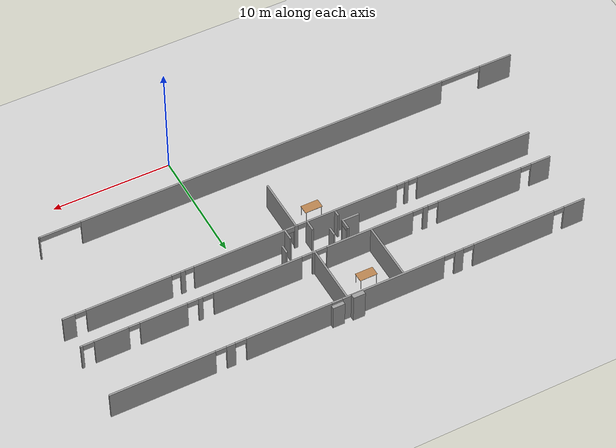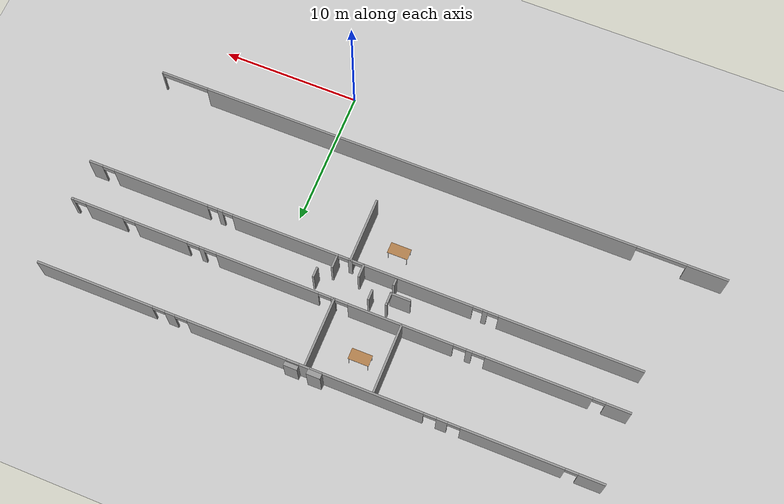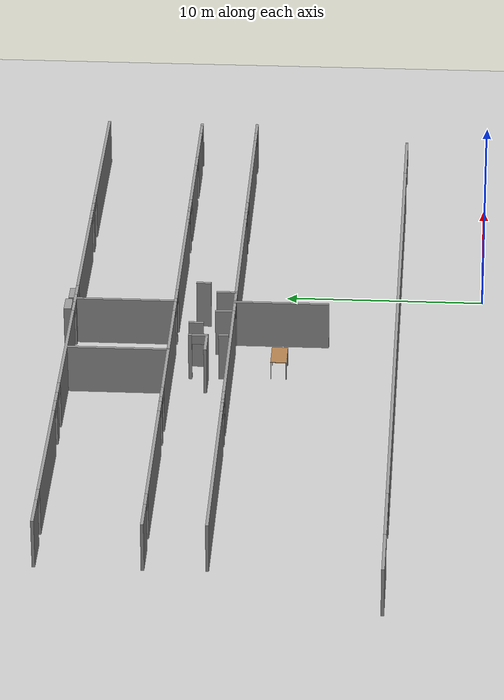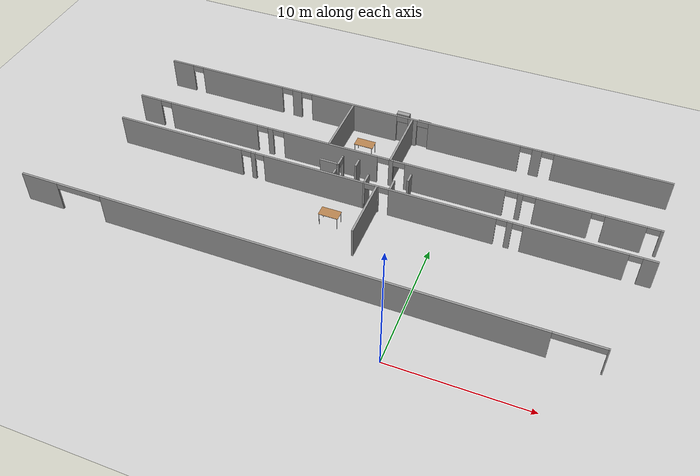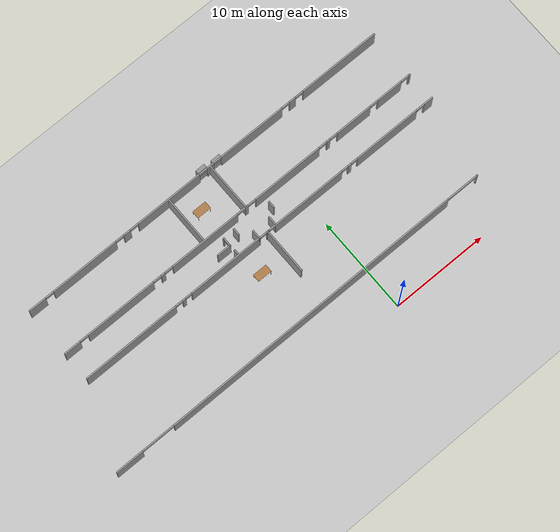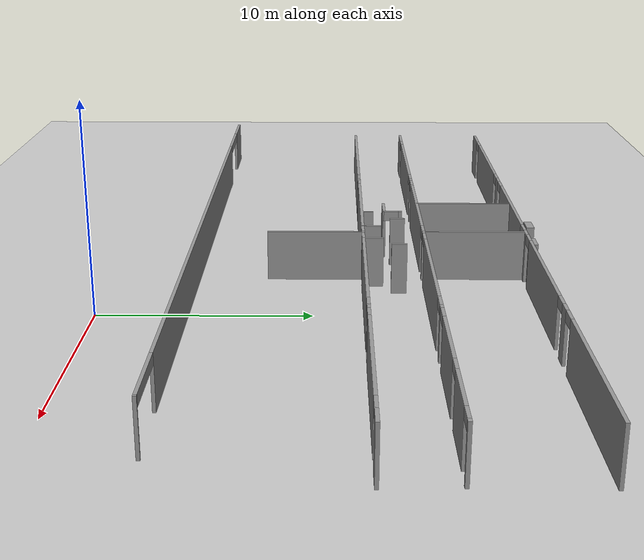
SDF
<sdf version="1.6">
 <world name="default">
  <model name="ground_plane">
   <static>1</static>
   <link name="link">
    <collision name="collision">
     <geometry><plane><normal>0 0 1</normal><size>100 100</size></plane></geometry>
     <surface><friction><ode><mu>100</mu><mu2>50</mu2></ode></friction></surface>
    </collision>
    <visual name="visual">
     <cast_shadows>0</cast_shadows>
     <geometry><plane><normal>0 0 1</normal><size>100 100</size></plane></geometry>
     <material>
      <script><uri>file://media/materials/scripts/gazebo.material</uri><name>Gazebo/Grey</name></script>
     </material>
    </visual>
   </link>
  </model>
  <model name="fin_se1f1.sdf">
   <pose>1.8125 -2.2901 0 0 -0 0</pose>
   <link name="Wall_1">
    <pose>-9.82457 6.52457 0 0 -0 0</pose>
    <visual name="Wall_1_Visual_0">
     <pose>-19.528 0 1.25 0 -0 0</pose>
     <geometry><box><size>2.94395 0.15 2.5</size></box></geometry>
     <material>
      <script><uri>file://media/materials/scripts/gazebo.material</uri><name>Gazebo/Grey</name></script>
      <ambient>1 1 1 1</ambient>
     </material>
     <meta><layer>0</layer></meta>
    </visual>
    <collision name="Wall_1_Collision_0">
     <geometry><box><size>2.94395 0.15 2.5</size></box></geometry>
     <pose>-19.528 0 1.25 0 -0 0</pose>
    </collision>
    <visual name="Wall_1_Visual_1">
     <pose>1.49202 0 1.25 0 -0 0</pose>
     <geometry><box><size>31.9924 0.15 2.5</size></box></geometry>
     <material>
      <script><uri>file://media/materials/scripts/gazebo.material</uri><name>Gazebo/Grey</name></script>
      <ambient>1 1 1 1</ambient>
     </material>
     <meta><layer>0</layer></meta>
    </visual>
    <collision name="Wall_1_Collision_1">
     <geometry><box><size>31.9924 0.15 2.5</size></box></geometry>
     <pose>1.49202 0 1.25 0 -0 0</pose>
    </collision>
    <visual name="Wall_1_Visual_2">
     <pose>20.9503 0 1.25 0 -0 0</pose>
     <geometry><box><size>0.099489 0.15 2.5</size></box></geometry>
     <material>
      <script><uri>file://media/materials/scripts/gazebo.material</uri><name>Gazebo/Grey</name></script>
      <ambient>1 1 1 1</ambient>
     </material>
     <meta><layer>0</layer></meta>
    </visual>
    <collision name="Wall_1_Collision_2">
     <geometry><box><size>0.099489 0.15 2.5</size></box></geometry>
     <pose>20.9503 0 1.25 0 -0 0</pose>
    </collision>
    <visual name="Wall_1_Visual_3">
     <pose>-16.2801 0 2.25 0 -0 0</pose>
     <geometry><box><size>3.55186 0.15 0.5</size></box></geometry>
     <material>
      <script><uri>file://media/materials/scripts/gazebo.material</uri><name>Gazebo/Grey</name></script>
      <ambient>1 1 1 1</ambient>
     </material>
     <meta><layer>0</layer></meta>
    </visual>
    <collision name="Wall_1_Collision_3">
     <geometry><box><size>3.55186 0.15 0.5</size></box></geometry>
     <pose>-16.2801 0 2.25 0 -0 0</pose>
    </collision>
    <visual name="Wall_1_Visual_4">
     <pose>19.1944 0 2.25 0 -0 0</pose>
     <geometry><box><size>3.41229 0.15 0.5</size></box></geometry>
     <material>
      <script><uri>file://media/materials/scripts/gazebo.material</uri><name>Gazebo/Grey</name></script>
      <ambient>1 1 1 1</ambient>
     </material>
     <meta><layer>0</layer></meta>
    </visual>
    <collision name="Wall_1_Collision_4">
     <geometry><box><size>3.41229 0.15 0.5</size></box></geometry>
     <pose>19.1944 0 2.25 0 -0 0</pose>
    </collision>
   </link>
   <link name="Wall_102">
    <collision name="Wall_102_Collision">
     <geometry><box><size>0.75 0.15 2.5</size></box></geometry>
     <pose>0 0 1.25 0 -0 0</pose>
    </collision>
    <visual name="Wall_102_Visual">
     <pose>0 0 1.25 0 -0 0</pose>
     <geometry><box><size>0.75 0.15 2.5</size></box></geometry>
     <material>
      <script><uri>file://media/materials/scripts/gazebo.material</uri><name>Gazebo/Grey</name></script>
      <ambient>1 1 1 1</ambient>
     </material>
     <meta><layer>0</layer></meta>
    </visual>
    <pose>-8.86395 16.4896 0 0 0 -1.5708</pose>
   </link>
   <link name="Wall_112">
    <collision name="Wall_112_Collision">
     <geometry><box><size>4.75 0.15 2.5</size></box></geometry>
     <pose>0 0 1.25 0 -0 0</pose>
    </collision>
    <visual name="Wall_112_Visual">
     <pose>0 0 1.25 0 -0 0</pose>
     <geometry><box><size>4.75 0.15 2.5</size></box></geometry>
     <material>
      <script><uri>file://media/materials/scripts/gazebo.material</uri><name>Gazebo/Grey</name></script>
      <ambient>1 1 1 1</ambient>
     </material>
     <meta><layer>0</layer></meta>
    </visual>
    <pose>-6.68954 12.3361 0 0 0 -1.5708</pose>
   </link>
   <link name="Wall_127">
    <pose>-10.1137 16.2977 0 0 0 -1.5708</pose>
    <visual name="Wall_127_Visual_0">
     <pose>-0.408972 0 1.25 0 -0 0</pose>
     <geometry><box><size>0.182055 0.15 2.5</size></box></geometry>
     <material>
      <script><uri>file://media/materials/scripts/gazebo.material</uri><name>Gazebo/Grey</name></script>
      <ambient>1 1 1 1</ambient>
     </material>
     <meta><layer>0</layer></meta>
    </visual>
    <collision name="Wall_127_Collision_0">
     <geometry><box><size>0.182055 0.15 2.5</size></box></geometry>
     <pose>-0.408972 0 1.25 0 -0 0</pose>
    </collision>
    <visual name="Wall_127_Visual_1">
     <pose>0.480687 0 1.25 0 -0 0</pose>
     <geometry><box><size>0.038626 0.15 2.5</size></box></geometry>
     <material>
      <script><uri>file://media/materials/scripts/gazebo.material</uri><name>Gazebo/Grey</name></script>
      <ambient>1 1 1 1</ambient>
     </material>
     <meta><layer>0</layer></meta>
    </visual>
    <collision name="Wall_127_Collision_1">
     <geometry><box><size>0.038626 0.15 2.5</size></box></geometry>
     <pose>0.480687 0 1.25 0 -0 0</pose>
    </collision>
    <visual name="Wall_127_Visual_2">
     <pose>0.071714 0 2.25 0 -0 0</pose>
     <geometry><box><size>0.779319 0.15 0.5</size></box></geometry>
     <material>
      <script><uri>file://media/materials/scripts/gazebo.material</uri><name>Gazebo/Grey</name></script>
      <ambient>1 1 1 1</ambient>
     </material>
     <meta><layer>0</layer></meta>
    </visual>
    <collision name="Wall_127_Collision_2">
     <geometry><box><size>0.779319 0.15 0.5</size></box></geometry>
     <pose>0.071714 0 2.25 0 -0 0</pose>
    </collision>
   </link>
   <link name="Wall_128">
    <collision name="Wall_128_Collision">
     <geometry><box><size>1.5 0.15 2.5</size></box></geometry>
     <pose>0 0 1.25 0 -0 0</pose>
    </collision>
    <visual name="Wall_128_Visual">
     <pose>0 0 1.25 0 -0 0</pose>
     <geometry><box><size>1.5 0.15 2.5</size></box></geometry>
     <material>
      <script><uri>file://media/materials/scripts/gazebo.material</uri><name>Gazebo/Grey</name></script>
      <ambient>1 1 1 1</ambient>
     </material>
     <meta><layer>0</layer></meta>
    </visual>
    <pose>-10.7887 15.8727 0 0 -0 3.14159</pose>
   </link>
   <link name="Wall_130">
    <collision name="Wall_130_Collision">
     <geometry><box><size>0.5 0.15 2.5</size></box></geometry>
     <pose>0 0 1.25 0 -0 0</pose>
    </collision>
    <visual name="Wall_130_Visual">
     <pose>0 0 1.25 0 -0 0</pose>
     <geometry><box><size>0.5 0.15 2.5</size></box></geometry>
     <material>
      <script><uri>file://media/materials/scripts/gazebo.material</uri><name>Gazebo/Grey</name></script>
      <ambient>1 1 1 1</ambient>
     </material>
     <meta><layer>0</layer></meta>
    </visual>
    <pose>-10.0602 15.0496 0 0 0 -1.5708</pose>
   </link>
   <link name="Wall_132">
    <collision name="Wall_132_Collision">
     <geometry><box><size>0.75 0.15 2.5</size></box></geometry>
     <pose>0 0 1.25 0 -0 0</pose>
    </collision>
    <visual name="Wall_132_Visual">
     <pose>0 0 1.25 0 -0 0</pose>
     <geometry><box><size>0.75 0.15 2.5</size></box></geometry>
     <material>
      <script><uri>file://media/materials/scripts/gazebo.material</uri><name>Gazebo/Grey</name></script>
      <ambient>1 1 1 1</ambient>
     </material>
     <meta><layer>0</layer></meta>
    </visual>
    <pose>-4.81696 16.3807 0 0 -0 1.5708</pose>
   </link>
   <link name="Wall_136">
    <collision name="Wall_136_Collision">
     <geometry><box><size>1 0.15 2.5</size></box></geometry>
     <pose>0 0 1.25 0 -0 0</pose>
    </collision>
    <visual name="Wall_136_Visual">
     <pose>0 0 1.25 0 -0 0</pose>
     <geometry><box><size>1 0.15 2.5</size></box></geometry>
     <material>
      <script><uri>file://media/materials/scripts/gazebo.material</uri><name>Gazebo/Grey</name></script>
      <ambient>1 1 1 1</ambient>
     </material>
     <meta><layer>0</layer></meta>
    </visual>
    <pose>-5.7265 15.1681 0 0 -0 1.5708</pose>
   </link>
   <link name="Wall_138">
    <collision name="Wall_138_Collision">
     <geometry><box><size>1 0.15 2.5</size></box></geometry>
     <pose>0 0 1.25 0 -0 0</pose>
    </collision>
    <visual name="Wall_138_Visual">
     <pose>0 0 1.25 0 -0 0</pose>
     <geometry><box><size>1 0.15 2.5</size></box></geometry>
     <material>
      <script><uri>file://media/materials/scripts/gazebo.material</uri><name>Gazebo/Grey</name></script>
      <ambient>1 1 1 1</ambient>
     </material>
     <meta><layer>0</layer></meta>
    </visual>
    <pose>-7.65259 15.1146 0 0 -0 1.5708</pose>
   </link>
   <link name="Wall_22">
    <pose>-7.37457 22.7246 0 0 -0 3.14159</pose>
    <visual name="Wall_22_Visual_0">
     <pose>-15.9484 0 1.25 0 -0 0</pose>
     <geometry><box><size>8.60329 0.15 2.5</size></box></geometry>
     <material>
      <script><uri>file://media/materials/scripts/gazebo.material</uri><name>Gazebo/Grey</name></script>
      <ambient>1 1 1 1</ambient>
     </material>
     <meta><layer>0</layer></meta>
    </visual>
    <collision name="Wall_22_Collision_0">
     <geometry><box><size>8.60329 0.15 2.5</size></box></geometry>
     <pose>-15.9484 0 1.25 0 -0 0</pose>
    </collision>
    <visual name="Wall_22_Visual_1">
     <pose>-10.3821 0 1.25 0 -0 0</pose>
     <geometry><box><size>0.729199 0.15 2.5</size></box></geometry>
     <material>
      <script><uri>file://media/materials/scripts/gazebo.material</uri><name>Gazebo/Grey</name></script>
      <ambient>1 1 1 1</ambient>
     </material>
     <meta><layer>0</layer></meta>
    </visual>
    <collision name="Wall_22_Collision_1">
     <geometry><box><size>0.729199 0.15 2.5</size></box></geometry>
     <pose>-10.3821 0 1.25 0 -0 0</pose>
    </collision>
    <visual name="Wall_22_Visual_2">
     <pose>-5.52468 0 1.25 0 -0 0</pose>
     <geometry><box><size>7.18566 0.15 2.5</size></box></geometry>
     <material>
      <script><uri>file://media/materials/scripts/gazebo.material</uri><name>Gazebo/Grey</name></script>
      <ambient>1 1 1 1</ambient>
     </material>
     <meta><layer>0</layer></meta>
    </visual>
    <collision name="Wall_22_Collision_2">
     <geometry><box><size>7.18566 0.15 2.5</size></box></geometry>
     <pose>-5.52468 0 1.25 0 -0 0</pose>
    </collision>
    <visual name="Wall_22_Visual_3">
     <pose>-0.657198 0 1.25 0 -0 0</pose>
     <geometry><box><size>0.749313 0.15 2.5</size></box></geometry>
     <material>
      <script><uri>file://media/materials/scripts/gazebo.material</uri><name>Gazebo/Grey</name></script>
      <ambient>1 1 1 1</ambient>
     </material>
     <meta><layer>0</layer></meta>
    </visual>
    <collision name="Wall_22_Collision_3">
     <geometry><box><size>0.749313 0.15 2.5</size></box></geometry>
     <pose>-0.657198 0 1.25 0 -0 0</pose>
    </collision>
    <visual name="Wall_22_Visual_4">
     <pose>4.19017 0 1.25 0 -0 0</pose>
     <geometry><box><size>7.14543 0.15 2.5</size></box></geometry>
     <material>
      <script><uri>file://media/materials/scripts/gazebo.material</uri><name>Gazebo/Grey</name></script>
      <ambient>1 1 1 1</ambient>
     </material>
     <meta><layer>0</layer></meta>
    </visual>
    <collision name="Wall_22_Collision_4">
     <geometry><box><size>7.14543 0.15 2.5</size></box></geometry>
     <pose>4.19017 0 1.25 0 -0 0</pose>
    </collision>
    <visual name="Wall_22_Visual_5">
     <pose>9.0476 0 1.25 0 -0 0</pose>
     <geometry><box><size>0.769426 0.15 2.5</size></box></geometry>
     <material>
      <script><uri>file://media/materials/scripts/gazebo.material</uri><name>Gazebo/Grey</name></script>
      <ambient>1 1 1 1</ambient>
     </material>
     <meta><layer>0</layer></meta>
    </visual>
    <collision name="Wall_22_Collision_5">
     <geometry><box><size>0.769426 0.15 2.5</size></box></geometry>
     <pose>9.0476 0 1.25 0 -0 0</pose>
    </collision>
    <visual name="Wall_22_Visual_6">
     <pose>13.9151 0 1.25 0 -0 0</pose>
     <geometry><box><size>7.16554 0.15 2.5</size></box></geometry>
     <material>
      <script><uri>file://media/materials/scripts/gazebo.material</uri><name>Gazebo/Grey</name></script>
      <ambient>1 1 1 1</ambient>
     </material>
     <meta><layer>0</layer></meta>
    </visual>
    <collision name="Wall_22_Collision_6">
     <geometry><box><size>7.16554 0.15 2.5</size></box></geometry>
     <pose>13.9151 0 1.25 0 -0 0</pose>
    </collision>
    <visual name="Wall_22_Visual_7">
     <pose>19.3239 0 1.25 0 -0 0</pose>
     <geometry><box><size>1.85214 0.15 2.5</size></box></geometry>
     <material>
      <script><uri>file://media/materials/scripts/gazebo.material</uri><name>Gazebo/Grey</name></script>
      <ambient>1 1 1 1</ambient>
     </material>
     <meta><layer>0</layer></meta>
    </visual>
    <collision name="Wall_22_Collision_7">
     <geometry><box><size>1.85214 0.15 2.5</size></box></geometry>
     <pose>19.3239 0 1.25 0 -0 0</pose>
    </collision>
    <visual name="Wall_22_Visual_8">
     <pose>-11.1967 0 2.25 0 -0 0</pose>
     <geometry><box><size>0.9 0.15 0.5</size></box></geometry>
     <material>
      <script><uri>file://media/materials/scripts/gazebo.material</uri><name>Gazebo/Grey</name></script>
      <ambient>1 1 1 1</ambient>
     </material>
     <meta><layer>0</layer></meta>
    </visual>
    <collision name="Wall_22_Collision_8">
     <geometry><box><size>0.9 0.15 0.5</size></box></geometry>
     <pose>-11.1967 0 2.25 0 -0 0</pose>
    </collision>
    <visual name="Wall_22_Visual_9">
     <pose>-9.56751 0 2.25 0 -0 0</pose>
     <geometry><box><size>0.9 0.15 0.5</size></box></geometry>
     <material>
      <script><uri>file://media/materials/scripts/gazebo.material</uri><name>Gazebo/Grey</name></script>
      <ambient>1 1 1 1</ambient>
     </material>
     <meta><layer>0</layer></meta>
    </visual>
    <collision name="Wall_22_Collision_9">
     <geometry><box><size>0.9 0.15 0.5</size></box></geometry>
     <pose>-9.56751 0 2.25 0 -0 0</pose>
    </collision>
    <visual name="Wall_22_Visual_10">
     <pose>-1.48185 0 2.25 0 -0 0</pose>
     <geometry><box><size>0.9 0.15 0.5</size></box></geometry>
     <material>
      <script><uri>file://media/materials/scripts/gazebo.material</uri><name>Gazebo/Grey</name></script>
      <ambient>1 1 1 1</ambient>
     </material>
     <meta><layer>0</layer></meta>
    </visual>
    <collision name="Wall_22_Collision_10">
     <geometry><box><size>0.9 0.15 0.5</size></box></geometry>
     <pose>-1.48185 0 2.25 0 -0 0</pose>
    </collision>
    <visual name="Wall_22_Visual_11">
     <pose>0.167459 0 2.25 0 -0 0</pose>
     <geometry><box><size>0.9 0.15 0.5</size></box></geometry>
     <material>
      <script><uri>file://media/materials/scripts/gazebo.material</uri><name>Gazebo/Grey</name></script>
      <ambient>1 1 1 1</ambient>
     </material>
     <meta><layer>0</layer></meta>
    </visual>
    <collision name="Wall_22_Collision_11">
     <geometry><box><size>0.9 0.15 0.5</size></box></geometry>
     <pose>0.167459 0 2.25 0 -0 0</pose>
    </collision>
    <visual name="Wall_22_Visual_12">
     <pose>8.21289 0 2.25 0 -0 0</pose>
     <geometry><box><size>0.9 0.15 0.5</size></box></geometry>
     <material>
      <script><uri>file://media/materials/scripts/gazebo.material</uri><name>Gazebo/Grey</name></script>
      <ambient>1 1 1 1</ambient>
     </material>
     <meta><layer>0</layer></meta>
    </visual>
    <collision name="Wall_22_Collision_12">
     <geometry><box><size>0.9 0.15 0.5</size></box></geometry>
     <pose>8.21289 0 2.25 0 -0 0</pose>
    </collision>
    <visual name="Wall_22_Visual_13">
     <pose>9.88231 0 2.25 0 -0 0</pose>
     <geometry><box><size>0.9 0.15 0.5</size></box></geometry>
     <material>
      <script><uri>file://media/materials/scripts/gazebo.material</uri><name>Gazebo/Grey</name></script>
      <ambient>1 1 1 1</ambient>
     </material>
     <meta><layer>0</layer></meta>
    </visual>
    <collision name="Wall_22_Collision_13">
     <geometry><box><size>0.9 0.15 0.5</size></box></geometry>
     <pose>9.88231 0 2.25 0 -0 0</pose>
    </collision>
    <visual name="Wall_22_Visual_14">
     <pose>17.9479 0 2.25 0 -0 0</pose>
     <geometry><box><size>0.9 0.15 0.5</size></box></geometry>
     <material>
      <script><uri>file://media/materials/scripts/gazebo.material</uri><name>Gazebo/Grey</name></script>
      <ambient>1 1 1 1</ambient>
     </material>
     <meta><layer>0</layer></meta>
    </visual>
    <collision name="Wall_22_Collision_14">
     <geometry><box><size>0.9 0.15 0.5</size></box></geometry>
     <pose>17.9479 0 2.25 0 -0 0</pose>
    </collision>
   </link>
   <link name="Wall_69">
    <pose>-7.41686 17.6737 0 0 -0 0</pose>
    <visual name="Wall_69_Visual_0">
     <pose>-19.3631 0 1.25 0 -0 0</pose>
     <geometry><box><size>1.77375 0.15 2.5</size></box></geometry>
     <material>
      <script><uri>file://media/materials/scripts/gazebo.material</uri><name>Gazebo/Grey</name></script>
      <ambient>1 1 1 1</ambient>
     </material>
     <meta><layer>0</layer></meta>
    </visual>
    <collision name="Wall_69_Collision_0">
     <geometry><box><size>1.77375 0.15 2.5</size></box></geometry>
     <pose>-19.3631 0 1.25 0 -0 0</pose>
    </collision>
    <visual name="Wall_69_Visual_1">
     <pose>-13.8326 0 1.25 0 -0 0</pose>
     <geometry><box><size>7.48736 0.15 2.5</size></box></geometry>
     <material>
      <script><uri>file://media/materials/scripts/gazebo.material</uri><name>Gazebo/Grey</name></script>
      <ambient>1 1 1 1</ambient>
     </material>
     <meta><layer>0</layer></meta>
    </visual>
    <collision name="Wall_69_Collision_1">
     <geometry><box><size>7.48736 0.15 2.5</size></box></geometry>
     <pose>-13.8326 0 1.25 0 -0 0</pose>
    </collision>
    <visual name="Wall_69_Visual_2">
     <pose>-8.97514 0 1.25 0 -0 0</pose>
     <geometry><box><size>0.427496 0.15 2.5</size></box></geometry>
     <material>
      <script><uri>file://media/materials/scripts/gazebo.material</uri><name>Gazebo/Grey</name></script>
      <ambient>1 1 1 1</ambient>
     </material>
     <meta><layer>0</layer></meta>
    </visual>
    <collision name="Wall_69_Collision_2">
     <geometry><box><size>0.427496 0.15 2.5</size></box></geometry>
     <pose>-8.97514 0 1.25 0 -0 0</pose>
    </collision>
    <visual name="Wall_69_Visual_3">
     <pose>-4.08754 0 1.25 0 -0 0</pose>
     <geometry><box><size>7.5477 0.15 2.5</size></box></geometry>
     <material>
      <script><uri>file://media/materials/scripts/gazebo.material</uri><name>Gazebo/Grey</name></script>
      <ambient>1 1 1 1</ambient>
     </material>
     <meta><layer>0</layer></meta>
    </visual>
    <collision name="Wall_69_Collision_3">
     <geometry><box><size>7.5477 0.15 2.5</size></box></geometry>
     <pose>-4.08754 0 1.25 0 -0 0</pose>
    </collision>
    <visual name="Wall_69_Visual_4">
     <pose>0.749771 0 1.25 0 -0 0</pose>
     <geometry><box><size>0.326928 0.15 2.5</size></box></geometry>
     <material>
      <script><uri>file://media/materials/scripts/gazebo.material</uri><name>Gazebo/Grey</name></script>
      <ambient>1 1 1 1</ambient>
     </material>
     <meta><layer>0</layer></meta>
    </visual>
    <collision name="Wall_69_Collision_4">
     <geometry><box><size>0.326928 0.15 2.5</size></box></geometry>
     <pose>0.749771 0 1.25 0 -0 0</pose>
    </collision>
    <visual name="Wall_69_Visual_5">
     <pose>5.56697 0 1.25 0 -0 0</pose>
     <geometry><box><size>7.50747 0.15 2.5</size></box></geometry>
     <material>
      <script><uri>file://media/materials/scripts/gazebo.material</uri><name>Gazebo/Grey</name></script>
      <ambient>1 1 1 1</ambient>
     </material>
     <meta><layer>0</layer></meta>
    </visual>
    <collision name="Wall_69_Collision_5">
     <geometry><box><size>7.50747 0.15 2.5</size></box></geometry>
     <pose>5.56697 0 1.25 0 -0 0</pose>
    </collision>
    <visual name="Wall_69_Visual_6">
     <pose>10.4043 0 1.25 0 -0 0</pose>
     <geometry><box><size>0.367155 0.15 2.5</size></box></geometry>
     <material>
      <script><uri>file://media/materials/scripts/gazebo.material</uri><name>Gazebo/Grey</name></script>
      <ambient>1 1 1 1</ambient>
     </material>
     <meta><layer>0</layer></meta>
    </visual>
    <collision name="Wall_69_Collision_6">
     <geometry><box><size>0.367155 0.15 2.5</size></box></geometry>
     <pose>10.4043 0 1.25 0 -0 0</pose>
    </collision>
    <visual name="Wall_69_Visual_7">
     <pose>13.4515 0 1.25 0 -0 0</pose>
     <geometry><box><size>3.92726 0.15 2.5</size></box></geometry>
     <material>
      <script><uri>file://media/materials/scripts/gazebo.material</uri><name>Gazebo/Grey</name></script>
      <ambient>1 1 1 1</ambient>
     </material>
     <meta><layer>0</layer></meta>
    </visual>
    <collision name="Wall_69_Collision_7">
     <geometry><box><size>3.92726 0.15 2.5</size></box></geometry>
     <pose>13.4515 0 1.25 0 -0 0</pose>
    </collision>
    <visual name="Wall_69_Visual_8">
     <pose>17.7256 0 1.25 0 -0 0</pose>
     <geometry><box><size>2.82101 0.15 2.5</size></box></geometry>
     <material>
      <script><uri>file://media/materials/scripts/gazebo.material</uri><name>Gazebo/Grey</name></script>
      <ambient>1 1 1 1</ambient>
     </material>
     <meta><layer>0</layer></meta>
    </visual>
    <collision name="Wall_69_Collision_8">
     <geometry><box><size>2.82101 0.15 2.5</size></box></geometry>
     <pose>17.7256 0 1.25 0 -0 0</pose>
    </collision>
    <visual name="Wall_69_Visual_9">
     <pose>20.1431 0 1.25 0 -0 0</pose>
     <geometry><box><size>0.21387 0.15 2.5</size></box></geometry>
     <material>
      <script><uri>file://media/materials/scripts/gazebo.material</uri><name>Gazebo/Grey</name></script>
      <ambient>1 1 1 1</ambient>
     </material>
     <meta><layer>0</layer></meta>
    </visual>
    <collision name="Wall_69_Collision_9">
     <geometry><box><size>0.21387 0.15 2.5</size></box></geometry>
     <pose>20.1431 0 1.25 0 -0 0</pose>
    </collision>
    <visual name="Wall_69_Visual_10">
     <pose>-18.0262 0 2.25 0 -0 0</pose>
     <geometry><box><size>0.9 0.15 0.5</size></box></geometry>
     <material>
      <script><uri>file://media/materials/scripts/gazebo.material</uri><name>Gazebo/Grey</name></script>
      <ambient>1 1 1 1</ambient>
     </material>
     <meta><layer>0</layer></meta>
    </visual>
    <collision name="Wall_69_Collision_10">
     <geometry><box><size>0.9 0.15 0.5</size></box></geometry>
     <pose>-18.0262 0 2.25 0 -0 0</pose>
    </collision>
    <visual name="Wall_69_Visual_11">
     <pose>-9.63889 0 2.25 0 -0 0</pose>
     <geometry><box><size>0.9 0.15 0.5</size></box></geometry>
     <material>
      <script><uri>file://media/materials/scripts/gazebo.material</uri><name>Gazebo/Grey</name></script>
      <ambient>1 1 1 1</ambient>
     </material>
     <meta><layer>0</layer></meta>
    </visual>
    <collision name="Wall_69_Collision_11">
     <geometry><box><size>0.9 0.15 0.5</size></box></geometry>
     <pose>-9.63889 0 2.25 0 -0 0</pose>
    </collision>
    <visual name="Wall_69_Visual_12">
     <pose>-8.31139 0 2.25 0 -0 0</pose>
     <geometry><box><size>0.9 0.15 0.5</size></box></geometry>
     <material>
      <script><uri>file://media/materials/scripts/gazebo.material</uri><name>Gazebo/Grey</name></script>
      <ambient>1 1 1 1</ambient>
     </material>
     <meta><layer>0</layer></meta>
    </visual>
    <collision name="Wall_69_Collision_12">
     <geometry><box><size>0.9 0.15 0.5</size></box></geometry>
     <pose>-8.31139 0 2.25 0 -0 0</pose>
    </collision>
    <visual name="Wall_69_Visual_13">
     <pose>0.136307 0 2.25 0 -0 0</pose>
     <geometry><box><size>0.9 0.15 0.5</size></box></geometry>
     <material>
      <script><uri>file://media/materials/scripts/gazebo.material</uri><name>Gazebo/Grey</name></script>
      <ambient>1 1 1 1</ambient>
     </material>
     <meta><layer>0</layer></meta>
    </visual>
    <collision name="Wall_69_Collision_13">
     <geometry><box><size>0.9 0.15 0.5</size></box></geometry>
     <pose>0.136307 0 2.25 0 -0 0</pose>
    </collision>
    <visual name="Wall_69_Visual_14">
     <pose>1.36323 0 2.25 0 -0 0</pose>
     <geometry><box><size>0.9 0.15 0.5</size></box></geometry>
     <material>
      <script><uri>file://media/materials/scripts/gazebo.material</uri><name>Gazebo/Grey</name></script>
      <ambient>1 1 1 1</ambient>
     </material>
     <meta><layer>0</layer></meta>
    </visual>
    <collision name="Wall_69_Collision_14">
     <geometry><box><size>0.9 0.15 0.5</size></box></geometry>
     <pose>1.36323 0 2.25 0 -0 0</pose>
    </collision>
    <visual name="Wall_69_Visual_15">
     <pose>9.77071 0 2.25 0 -0 0</pose>
     <geometry><box><size>0.9 0.15 0.5</size></box></geometry>
     <material>
      <script><uri>file://media/materials/scripts/gazebo.material</uri><name>Gazebo/Grey</name></script>
      <ambient>1 1 1 1</ambient>
     </material>
     <meta><layer>0</layer></meta>
    </visual>
    <collision name="Wall_69_Collision_15">
     <geometry><box><size>0.9 0.15 0.5</size></box></geometry>
     <pose>9.77071 0 2.25 0 -0 0</pose>
    </collision>
    <visual name="Wall_69_Visual_16">
     <pose>11.0379 0 2.25 0 -0 0</pose>
     <geometry><box><size>0.9 0.15 0.5</size></box></geometry>
     <material>
      <script><uri>file://media/materials/scripts/gazebo.material</uri><name>Gazebo/Grey</name></script>
      <ambient>1 1 1 1</ambient>
     </material>
     <meta><layer>0</layer></meta>
    </visual>
    <collision name="Wall_69_Collision_16">
     <geometry><box><size>0.9 0.15 0.5</size></box></geometry>
     <pose>11.0379 0 2.25 0 -0 0</pose>
    </collision>
    <visual name="Wall_69_Visual_17">
     <pose>15.8651 0 2.25 0 -0 0</pose>
     <geometry><box><size>0.9 0.15 0.5</size></box></geometry>
     <material>
      <script><uri>file://media/materials/scripts/gazebo.material</uri><name>Gazebo/Grey</name></script>
      <ambient>1 1 1 1</ambient>
     </material>
     <meta><layer>0</layer></meta>
    </visual>
    <collision name="Wall_69_Collision_17">
     <geometry><box><size>0.9 0.15 0.5</size></box></geometry>
     <pose>15.8651 0 2.25 0 -0 0</pose>
    </collision>
    <visual name="Wall_69_Visual_18">
     <pose>19.5861 0 2.25 0 -0 0</pose>
     <geometry><box><size>0.9 0.15 0.5</size></box></geometry>
     <material>
      <script><uri>file://media/materials/scripts/gazebo.material</uri><name>Gazebo/Grey</name></script>
      <ambient>1 1 1 1</ambient>
     </material>
     <meta><layer>0</layer></meta>
    </visual>
    <collision name="Wall_69_Collision_18">
     <geometry><box><size>0.9 0.15 0.5</size></box></geometry>
     <pose>19.5861 0 2.25 0 -0 0</pose>
    </collision>
   </link>
   <link name="Wall_80">
    <collision name="Wall_80_Collision">
     <geometry><box><size>5 0.15 2.5</size></box></geometry>
     <pose>0 0 1.25 0 -0 0</pose>
    </collision>
    <visual name="Wall_80_Visual">
     <pose>0 0 1.25 0 -0 0</pose>
     <geometry><box><size>5 0.15 2.5</size></box></geometry>
     <material>
      <script><uri>file://media/materials/scripts/gazebo.material</uri><name>Gazebo/Grey</name></script>
      <ambient>1 1 1 1</ambient>
     </material>
     <meta><layer>0</layer></meta>
    </visual>
    <pose>-6.73391 20.1709 0 0 0 -1.5708</pose>
   </link>
   <link name="Wall_82">
    <collision name="Wall_82_Collision">
     <geometry><box><size>5 0.15 2.5</size></box></geometry>
     <pose>0 0 1.25 0 -0 0</pose>
    </collision>
    <visual name="Wall_82_Visual">
     <pose>0 0 1.25 0 -0 0</pose>
     <geometry><box><size>5 0.15 2.5</size></box></geometry>
     <material>
      <script><uri>file://media/materials/scripts/gazebo.material</uri><name>Gazebo/Grey</name></script>
      <ambient>1 1 1 1</ambient>
     </material>
     <meta><layer>0</layer></meta>
    </visual>
    <pose>-11.5946 20.1602 0 0 -0 1.5708</pose>
   </link>
   <link name="Wall_88">
    <pose>-7.32702 14.6896 0 0 -0 0</pose>
    <visual name="Wall_88_Visual_0">
     <pose>-15.144 0 1.25 0 -0 0</pose>
     <geometry><box><size>10.2121 0.15 2.5</size></box></geometry>
     <material>
      <script><uri>file://media/materials/scripts/gazebo.material</uri><name>Gazebo/Grey</name></script>
      <ambient>1 1 1 1</ambient>
     </material>
     <meta><layer>0</layer></meta>
    </visual>
    <collision name="Wall_88_Collision_0">
     <geometry><box><size>10.2121 0.15 2.5</size></box></geometry>
     <pose>-15.144 0 1.25 0 -0 0</pose>
    </collision>
    <visual name="Wall_88_Visual_1">
     <pose>-9.0851 0 1.25 0 -0 0</pose>
     <geometry><box><size>0.347043 0.15 2.5</size></box></geometry>
     <material>
      <script><uri>file://media/materials/scripts/gazebo.material</uri><name>Gazebo/Grey</name></script>
      <ambient>1 1 1 1</ambient>
     </material>
     <meta><layer>0</layer></meta>
    </visual>
    <collision name="Wall_88_Collision_1">
     <geometry><box><size>0.347043 0.15 2.5</size></box></geometry>
     <pose>-9.0851 0 1.25 0 -0 0</pose>
    </collision>
    <visual name="Wall_88_Visual_2">
     <pose>-4.24778 0 1.25 0 -0 0</pose>
     <geometry><box><size>7.92986 0.15 2.5</size></box></geometry>
     <material>
      <script><uri>file://media/materials/scripts/gazebo.material</uri><name>Gazebo/Grey</name></script>
      <ambient>1 1 1 1</ambient>
     </material>
     <meta><layer>0</layer></meta>
    </visual>
    <collision name="Wall_88_Collision_2">
     <geometry><box><size>7.92986 0.15 2.5</size></box></geometry>
     <pose>-4.24778 0 1.25 0 -0 0</pose>
    </collision>
    <visual name="Wall_88_Visual_3">
     <pose>0.644846 0 1.25 0 -0 0</pose>
     <geometry><box><size>0.296758 0.15 2.5</size></box></geometry>
     <material>
      <script><uri>file://media/materials/scripts/gazebo.material</uri><name>Gazebo/Grey</name></script>
      <ambient>1 1 1 1</ambient>
     </material>
     <meta><layer>0</layer></meta>
    </visual>
    <collision name="Wall_88_Collision_3">
     <geometry><box><size>0.296758 0.15 2.5</size></box></geometry>
     <pose>0.644846 0 1.25 0 -0 0</pose>
    </collision>
    <visual name="Wall_88_Visual_4">
     <pose>5.45199 0 1.25 0 -0 0</pose>
     <geometry><box><size>7.83935 0.15 2.5</size></box></geometry>
     <material>
      <script><uri>file://media/materials/scripts/gazebo.material</uri><name>Gazebo/Grey</name></script>
      <ambient>1 1 1 1</ambient>
     </material>
     <meta><layer>0</layer></meta>
    </visual>
    <collision name="Wall_88_Collision_4">
     <geometry><box><size>7.83935 0.15 2.5</size></box></geometry>
     <pose>5.45199 0 1.25 0 -0 0</pose>
    </collision>
    <visual name="Wall_88_Visual_5">
     <pose>10.3044 0 1.25 0 -0 0</pose>
     <geometry><box><size>0.387269 0.15 2.5</size></box></geometry>
     <material>
      <script><uri>file://media/materials/scripts/gazebo.material</uri><name>Gazebo/Grey</name></script>
      <ambient>1 1 1 1</ambient>
     </material>
     <meta><layer>0</layer></meta>
    </visual>
    <collision name="Wall_88_Collision_5">
     <geometry><box><size>0.387269 0.15 2.5</size></box></geometry>
     <pose>10.3044 0 1.25 0 -0 0</pose>
    </collision>
    <visual name="Wall_88_Visual_6">
     <pose>14.7797 0 1.25 0 -0 0</pose>
     <geometry><box><size>7.08509 0.15 2.5</size></box></geometry>
     <material>
      <script><uri>file://media/materials/scripts/gazebo.material</uri><name>Gazebo/Grey</name></script>
      <ambient>1 1 1 1</ambient>
     </material>
     <meta><layer>0</layer></meta>
    </visual>
    <collision name="Wall_88_Collision_6">
     <geometry><box><size>7.08509 0.15 2.5</size></box></geometry>
     <pose>14.7797 0 1.25 0 -0 0</pose>
    </collision>
    <visual name="Wall_88_Visual_7">
     <pose>19.7361 0 1.25 0 -0 0</pose>
     <geometry><box><size>1.0278 0.15 2.5</size></box></geometry>
     <material>
      <script><uri>file://media/materials/scripts/gazebo.material</uri><name>Gazebo/Grey</name></script>
      <ambient>1 1 1 1</ambient>
     </material>
     <meta><layer>0</layer></meta>
    </visual>
    <collision name="Wall_88_Collision_7">
     <geometry><box><size>1.0278 0.15 2.5</size></box></geometry>
     <pose>19.7361 0 1.25 0 -0 0</pose>
    </collision>
    <visual name="Wall_88_Visual_8">
     <pose>-9.64827 0 2.25 0 -0 0</pose>
     <geometry><box><size>0.779319 0.15 0.5</size></box></geometry>
     <material>
      <script><uri>file://media/materials/scripts/gazebo.material</uri><name>Gazebo/Grey</name></script>
      <ambient>1 1 1 1</ambient>
     </material>
     <meta><layer>0</layer></meta>
    </visual>
    <collision name="Wall_88_Collision_8">
     <geometry><box><size>0.779319 0.15 0.5</size></box></geometry>
     <pose>-9.64827 0 2.25 0 -0 0</pose>
    </collision>
    <visual name="Wall_88_Visual_9">
     <pose>-8.56214 0 2.25 0 -0 0</pose>
     <geometry><box><size>0.698864 0.15 0.5</size></box></geometry>
     <material>
      <script><uri>file://media/materials/scripts/gazebo.material</uri><name>Gazebo/Grey</name></script>
      <ambient>1 1 1 1</ambient>
     </material>
     <meta><layer>0</layer></meta>
    </visual>
    <collision name="Wall_88_Collision_9">
     <geometry><box><size>0.698864 0.15 0.5</size></box></geometry>
     <pose>-8.56214 0 2.25 0 -0 0</pose>
    </collision>
    <visual name="Wall_88_Visual_10">
     <pose>0.106808 0 2.25 0 -0 0</pose>
     <geometry><box><size>0.779319 0.15 0.5</size></box></geometry>
     <material>
      <script><uri>file://media/materials/scripts/gazebo.material</uri><name>Gazebo/Grey</name></script>
      <ambient>1 1 1 1</ambient>
     </material>
     <meta><layer>0</layer></meta>
    </visual>
    <collision name="Wall_88_Collision_10">
     <geometry><box><size>0.779319 0.15 0.5</size></box></geometry>
     <pose>0.106808 0 2.25 0 -0 0</pose>
    </collision>
    <visual name="Wall_88_Visual_11">
     <pose>1.16277 0 2.25 0 -0 0</pose>
     <geometry><box><size>0.739091 0.15 0.5</size></box></geometry>
     <material>
      <script><uri>file://media/materials/scripts/gazebo.material</uri><name>Gazebo/Grey</name></script>
      <ambient>1 1 1 1</ambient>
     </material>
     <meta><layer>0</layer></meta>
    </visual>
    <collision name="Wall_88_Collision_11">
     <geometry><box><size>0.739091 0.15 0.5</size></box></geometry>
     <pose>1.16277 0 2.25 0 -0 0</pose>
    </collision>
    <visual name="Wall_88_Visual_12">
     <pose>9.74121 0 2.25 0 -0 0</pose>
     <geometry><box><size>0.739091 0.15 0.5</size></box></geometry>
     <material>
      <script><uri>file://media/materials/scripts/gazebo.material</uri><name>Gazebo/Grey</name></script>
      <ambient>1 1 1 1</ambient>
     </material>
     <meta><layer>0</layer></meta>
    </visual>
    <collision name="Wall_88_Collision_12">
     <geometry><box><size>0.739091 0.15 0.5</size></box></geometry>
     <pose>9.74121 0 2.25 0 -0 0</pose>
    </collision>
    <visual name="Wall_88_Visual_13">
     <pose>10.8676 0 2.25 0 -0 0</pose>
     <geometry><box><size>0.739091 0.15 0.5</size></box></geometry>
     <material>
      <script><uri>file://media/materials/scripts/gazebo.material</uri><name>Gazebo/Grey</name></script>
      <ambient>1 1 1 1</ambient>
     </material>
     <meta><layer>0</layer></meta>
    </visual>
    <collision name="Wall_88_Collision_13">
     <geometry><box><size>0.739091 0.15 0.5</size></box></geometry>
     <pose>10.8676 0 2.25 0 -0 0</pose>
    </collision>
    <visual name="Wall_88_Visual_14">
     <pose>18.7722 0 2.25 0 -0 0</pose>
     <geometry><box><size>0.9 0.15 0.5</size></box></geometry>
     <material>
      <script><uri>file://media/materials/scripts/gazebo.material</uri><name>Gazebo/Grey</name></script>
      <ambient>1 1 1 1</ambient>
     </material>
     <meta><layer>0</layer></meta>
    </visual>
    <collision name="Wall_88_Collision_14">
     <geometry><box><size>0.9 0.15 0.5</size></box></geometry>
     <pose>18.7722 0 2.25 0 -0 0</pose>
    </collision>
   </link>
   <static>1</static>
  </model>
  <model name="table_4">
   <static>1</static>
   <link name="link">
    <collision name="surface">
     <pose>0 0 1 0 -0 0</pose>
     <geometry><box><size>1.5 0.8 0.03</size></box></geometry>
     <surface><friction><ode><mu>0.6</mu><mu2>0.6</mu2></ode></friction></surface>
    </collision>
    <visual name="visual1">
     <pose>0 0 1 0 -0 0</pose>
     <geometry><box><size>1.5 0.8 0.03</size></box></geometry>
     <material>
      <script><uri>file://media/materials/scripts/gazebo.material</uri><name>Gazebo/Wood</name></script>
     </material>
    </visual>
    <collision name="front_left_leg">
     <pose>0.68 0.38 0.5 0 -0 0</pose>
     <geometry><cylinder><radius>0.02</radius><length>1</length></cylinder></geometry>
    </collision>
    <visual name="front_left_leg">
     <pose>0.68 0.38 0.5 0 -0 0</pose>
     <geometry><cylinder><radius>0.02</radius><length>1</length></cylinder></geometry>
     <material>
      <script><uri>file://media/materials/scripts/gazebo.material</uri><name>Gazebo/Grey</name></script>
     </material>
    </visual>
    <collision name="front_right_leg">
     <pose>0.68 -0.38 0.5 0 -0 0</pose>
     <geometry><cylinder><radius>0.02</radius><length>1</length></cylinder></geometry>
    </collision>
    <visual name="front_right_leg">
     <pose>0.68 -0.38 0.5 0 -0 0</pose>
     <geometry><cylinder><radius>0.02</radius><length>1</length></cylinder></geometry>
     <material>
      <script><uri>file://media/materials/scripts/gazebo.material</uri><name>Gazebo/Grey</name></script>
     </material>
    </visual>
    <collision name="back_right_leg">
     <pose>-0.68 -0.38 0.5 0 -0 0</pose>
     <geometry><cylinder><radius>0.02</radius><length>1</length></cylinder></geometry>
    </collision>
    <visual name="back_right_leg">
     <pose>-0.68 -0.38 0.5 0 -0 0</pose>
     <geometry><cylinder><radius>0.02</radius><length>1</length></cylinder></geometry>
     <material>
      <script><uri>file://media/materials/scripts/gazebo.material</uri><name>Gazebo/Grey</name></script>
     </material>
    </visual>
    <collision name="back_left_leg">
     <pose>-0.68 0.38 0.5 0 -0 0</pose>
     <geometry><cylinder><radius>0.02</radius><length>1</length></cylinder></geometry>
    </collision>
    <visual name="back_left_leg">
     <pose>-0.68 0.38 0.5 0 -0 0</pose>
     <geometry><cylinder><radius>0.02</radius><length>1</length></cylinder></geometry>
     <material>
      <script><uri>file://media/materials/scripts/gazebo.material</uri><name>Gazebo/Grey</name></script>
     </material>
    </visual>
   </link>
   <pose>-7.5086 10.0383 0 0 -0 0</pose>
  </model>
  <model name="table_5">
   <static>1</static>
   <link name="link">
    <collision name="surface">
     <pose>0 0 1 0 -0 0</pose>
     <geometry><box><size>1.5 0.8 0.03</size></box></geometry>
     <surface><friction><ode><mu>0.6</mu><mu2>0.6</mu2></ode></friction></surface>
    </collision>
    <visual name="visual1">
     <pose>0 0 1 0 -0 0</pose>
     <geometry><box><size>1.5 0.8 0.03</size></box></geometry>
     <material>
      <script><uri>file://media/materials/scripts/gazebo.material</uri><name>Gazebo/Wood</name></script>
     </material>
    </visual>
    <collision name="front_left_leg">
     <pose>0.68 0.38 0.5 0 -0 0</pose>
     <geometry><cylinder><radius>0.02</radius><length>1</length></cylinder></geometry>
    </collision>
    <visual name="front_left_leg">
     <pose>0.68 0.38 0.5 0 -0 0</pose>
     <geometry><cylinder><radius>0.02</radius><length>1</length></cylinder></geometry>
     <material>
      <script><uri>file://media/materials/scripts/gazebo.material</uri><name>Gazebo/Grey</name></script>
     </material>
    </visual>
    <collision name="front_right_leg">
     <pose>0.68 -0.38 0.5 0 -0 0</pose>
     <geometry><cylinder><radius>0.02</radius><length>1</length></cylinder></geometry>
    </collision>
    <visual name="front_right_leg">
     <pose>0.68 -0.38 0.5 0 -0 0</pose>
     <geometry><cylinder><radius>0.02</radius><length>1</length></cylinder></geometry>
     <material>
      <script><uri>file://media/materials/scripts/gazebo.material</uri><name>Gazebo/Grey</name></script>
     </material>
    </visual>
    <collision name="back_right_leg">
     <pose>-0.68 -0.38 0.5 0 -0 0</pose>
     <geometry><cylinder><radius>0.02</radius><length>1</length></cylinder></geometry>
    </collision>
    <visual name="back_right_leg">
     <pose>-0.68 -0.38 0.5 0 -0 0</pose>
     <geometry><cylinder><radius>0.02</radius><length>1</length></cylinder></geometry>
     <material>
      <script><uri>file://media/materials/scripts/gazebo.material</uri><name>Gazebo/Grey</name></script>
     </material>
    </visual>
    <collision name="back_left_leg">
     <pose>-0.68 0.38 0.5 0 -0 0</pose>
     <geometry><cylinder><radius>0.02</radius><length>1</length></cylinder></geometry>
    </collision>
    <visual name="back_left_leg">
     <pose>-0.68 0.38 0.5 0 -0 0</pose>
     <geometry><cylinder><radius>0.02</radius><length>1</length></cylinder></geometry>
     <material>
      <script><uri>file://media/materials/scripts/gazebo.material</uri><name>Gazebo/Grey</name></script>
     </material>
    </visual>
   </link>
   <pose>-7.90698 18.0796 0 0 -0 0</pose>
  </model>
  <model name="unit_box_6">
   <pose>-5.73629 20.701 1.30874 0 -0 7.2e-05</pose>
   <link name="link">
    <inertial>
     <mass>1</mass>
     <inertia>
      <ixx>0.166667</ixx>
      <ixy>0</ixy>
      <ixz>0</ixz>
      <iyy>0.166667</iyy>
      <iyz>0</iyz>
      <izz>0.166667</izz>
     </inertia>
    </inertial>
    <collision name="collision"><geometry><box><size>1 0.378887 2.61748</size></box></geometry></collision>
    <visual name="visual">
     <geometry><box><size>1 0.378887 2.61748</size></box></geometry>
     <material>
      <script><name>Gazebo/Grey</name><uri>file://media/materials/scripts/gazebo.material</uri></script>
     </material>
    </visual>
   </link>
  </model>
  <model name="unit_box_7">
   <pose>-4.04319 20.6676 1.14483 0 -2e-06 -0.003947</pose>
   <link name="link">
    <inertial>
     <mass>1</mass>
     <inertia>
      <ixx>0.166667</ixx>
      <ixy>0</ixy>
      <ixz>0</ixz>
      <iyy>0.166667</iyy>
      <iyz>0</iyz>
      <izz>0.166667</izz>
     </inertia>
    </inertial>
    <collision name="collision"><geometry><box><size>1 0.302303 2.28966</size></box></geometry></collision>
    <visual name="visual">
     <geometry><box><size>1 0.302303 2.28966</size></box></geometry>
     <material>
      <script><name>Gazebo/Grey</name><uri>file://media/materials/scripts/gazebo.material</uri></script>
     </material>
    </visual>
   </link>
  </model>
 </world>
</sdf>
